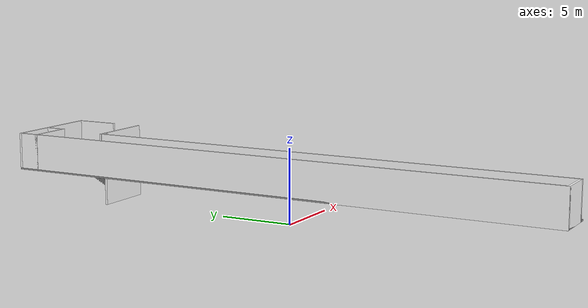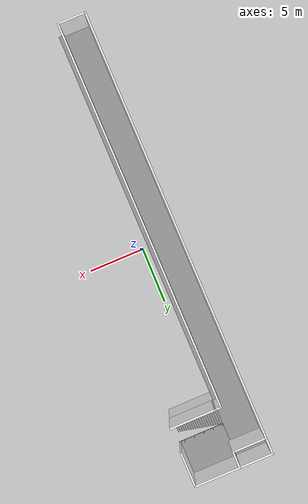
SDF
<?xml version='1.0'?>
<sdf version='1.7'>
  <model name='Building7_4th_Floor_collision_validation_withWall1'>
    <pose>0 0 0 0 0 0</pose>
    <link name='Wall_1'>
      <collision name='Wall_1_Collision'>
        <geometry>
          <box>
            <size>37 0.15 2.5</size>
          </box>
        </geometry>
        <pose>0 0 1.25 0 -0 0</pose>
      </collision>
      <visual name='Wall_1_Visual'>
        <pose>0 0 1.25 0 -0 0</pose>
        <geometry>
          <box>
            <size>37 0.15 2.5</size>
          </box>
        </geometry>
        <material>
			 <script>
            <name>Wand_beige</name>
          </script>
          <ambient>1 1 1 1</ambient>
        </material>
        <meta>
          <layer>1</layer>
        </meta>
      </visual>
      <pose>-3.35009 -0.675 2.5 0 -0 -1.5708</pose>
    </link>
    <link name='Wall_2'>
      <collision name='Wall_2_Collision'>
        <geometry>
          <box>
            <size>2.5 0.15 2.5</size>
          </box>
        </geometry>
        <pose>0 0 1.25 0 -0 0</pose>
      </collision>
      <visual name='Wall_2_Visual'>
        <pose>0 0 1.25 0 -0 0</pose>
        <geometry>
          <box>
            <size>2.5 0.15 2.5</size>
          </box>
        </geometry>
        <material>
          <script>
            <name>Wand_beige</name>
          </script>
          <ambient>1 1 1 1</ambient>
        </material>
        <meta>
          <layer>1</layer>
        </meta>
      </visual>
      <pose>-2.17509 -19.1 2.5 0 -0 0</pose>
    </link>
    <link name='Wall_3'>
      <collision name='Wall_3_Collision'>
        <geometry>
          <box>
            <size>33.341 0.15 2.5</size>
          </box>
        </geometry>
        <pose>0 0 1.25 0 -0 0</pose>
      </collision>
      <visual name='Wall_3_Visual'>
        <pose>0 0 1.25 0 -0 0</pose>
        <geometry>
          <box>
            <size>33.341 0.15 2.5</size>
          </box>
        </geometry>
        <material>
          <script>
            <name>Wand_beige</name>
          </script>
          <ambient>1 1 1 1</ambient>
        </material>
        <meta>
          <layer>1</layer>
        </meta>
      </visual>
      <pose>-1.00009 -2.5045 2.5 0 -0 -1.5708</pose>
    </link>
    <link name='Wall_4'>
      <collision name='Wall_4_Collision'>
        <geometry>
          <box>
            <size>0.65 0.15 2.5</size>
          </box>
        </geometry>
        <pose>0 0 1.25 0 -0 0</pose>
      </collision>
      <visual name='Wall_4_Visual'>
        <pose>0 0 1.25 0 -0 0</pose>
        <geometry>
          <box>
            <size>0.65 0.15 2.5</size>
          </box>
        </geometry>
        <material>
          <script>
            <name>Wand_beige</name>
          </script>
          <ambient>1 1 1 1</ambient>
        </material>
        <meta>
          <layer>1</layer>
        </meta>
      </visual>
      <pose>-0.749999 14.0908 2.5 0 -0 3.14087</pose>
    </link>
    <link name='Wall_6'>
      <collision name='Wall_6_Collision'>
        <geometry>
          <box>
            <size>3 0.15 2.5</size>
          </box>
        </geometry>
        <pose>0 0 1.25 0 -0 0</pose>
      </collision>
      <visual name='Wall_6_Visual'>
        <pose>0 0 1.25 0 -0 0</pose>
        <geometry>
          <box>
            <size>3 0.15 2.5</size>
          </box>
        </geometry>
        <material>
          <script>
            <name>Wand_beige</name>
          </script>
          <ambient>1 1 1 1</ambient>
        </material>
        <meta>
          <layer>1</layer>
        </meta>
      </visual>
      <pose>3.34991 17.675 2.5 0 -0 1.5708</pose>
    </link>
    <link name='Wall_7'>
      <collision name='Wall_7_Collision'>
        <geometry>
          <box>
            <size>4 0.15 2.5</size>
          </box>
        </geometry>
        <pose>0 0 1.25 0 -0 0</pose>
      </collision>
      <visual name='Wall_7_Visual'>
        <pose>0 0 1.25 0 -0 0</pose>
        <geometry>
          <box>
            <size>4 0.15 2.5</size>
          </box>
        </geometry>
        <material>
          <script>
            <name>Wand_beige</name>
          </script>
          <ambient>1 1 1 1</ambient>
        </material>
        <meta>
          <layer>1</layer>
        </meta>
      </visual>
      <pose>1.42491 19.1 2.5 0 -0 3.14159</pose>
    </link>
    <link name='Wall_8'>
      <collision name='Wall_8_Collision'>
        <geometry>
          <box>
            <size>1.5 0.15 2.5</size>
          </box>
        </geometry>
        <pose>0 0 1.25 0 -0 0</pose>
      </collision>
      <visual name='Wall_8_Visual'>
        <pose>0 0 1.25 0 -0 0</pose>
        <geometry>
          <box>
            <size>1.5 0.15 2.5</size>
          </box>
        </geometry>
        <material>
          <script>
            <name>Wand_beige</name>
          </script>
          <ambient>1 1 1 1</ambient>
        </material>
        <meta>
          <layer>1</layer>
        </meta>
      </visual>
      <pose>-0.500093 18.425 2.5 0 -0 -1.5708</pose>
    </link>
    <link name='Wall_9'>
      <collision name='Wall_9_Collision'>
        <geometry>
          <box>
            <size>3 0.15 2.5</size>
          </box>
        </geometry>
        <pose>0 0 1.25 0 -0 0</pose>
      </collision>
      <visual name='Wall_9_Visual'>
        <pose>0 0 1.25 0 -0 0</pose>
        <geometry>
          <box>
            <size>3 0.15 2.5</size>
          </box>
        </geometry>
        <material>
          <script>
            <name>Wand_beige</name>
          </script>
          <ambient>1 1 1 1</ambient>
        </material>
        <meta>
          <layer>1</layer>
        </meta>
      </visual>
      <pose>-1.92509 17.75 2.5 0 -0 3.14159</pose>
    </link>
    <link name='Wall_10'>
      <collision name='Wall_10_Collision'>
        <geometry>
          <box>
            <size>0.04 0.04 0.5</size>
          </box>
        </geometry>
        <pose>2.22 0 0.25 0 -0 0</pose>
      </collision>
      <visual name='Wall_10_Visual'>
        <pose>2.22 0 0.25 0 -0 0</pose>
        <geometry>
          <box>
            <size>0.04 0.04 0.5</size>
          </box>
        </geometry>
        <material>
          <script>
            <name>Wand_beige</name>
          </script>
          <ambient>1 1 1 1</ambient>
        </material>
        <meta>
          <layer>1</layer>
        </meta>
      </visual>
      <pose>-0.500093 18.425 2.5 0 -0 -1.5708</pose>
    </link>
    <link name='Wall_11'>
      <collision name='Wall_11_Collision'>
        <geometry>
          <box>
            <size>0.04 0.04 0.5</size>
          </box>
        </geometry>
        <pose>2.22 0.85 0.25 0 -0 0</pose>
      </collision>
      <visual name='Wall_12_Visual'>
        <pose>2.22 0.85 0.25 0 -0 0</pose>
        <geometry>
          <box>
            <size>0.04 0.04 0.5</size>
          </box>
        </geometry>
        <material>
          <script>
            <name>Wand_beige</name>
          </script>
          <ambient>1 1 1 1</ambient>
        </material>
        <meta>
          <layer>1</layer>
        </meta>
      </visual>
      <pose>-0.500093 18.425 2.5 0 -0 -1.5708</pose>
    </link>
    <link name='Wall_12'>
      <collision name='Wall_12_Collision'>
        <geometry>
          <box>
            <size>0.04 0.04 0.5</size>
          </box>
        </geometry>
        <pose>2.22 1.7 0.25 0 -0 0</pose>
      </collision>
      <visual name='Wall_12_Visual'>
        <pose>2.22 1.7 0.25 0 -0 0</pose>
        <geometry>
          <box>
            <size>0.04 0.04 0.5</size>
          </box>
        </geometry>
        <material>
          <script>
            <name>Wand_beige</name>
          </script>
          <ambient>1 1 1 1</ambient>
        </material>
        <meta>
          <layer>1</layer>
        </meta>
      </visual>
      <pose>-0.500093 18.425 2.5 0 -0 -1.5708</pose>
    </link>
    <link name='Wall_13'>
      <collision name='Wall_13_Collision'>
        <geometry>
          <box>
            <size>0.04 0.04 0.5</size>
          </box>
        </geometry>
        <pose>2.22 2.55 0.25 0 -0 0</pose>
      </collision>
      <visual name='Wall_13_Visual'>
        <pose>2.22 2.55 0.25 0 -0 0</pose>
        <geometry>
          <box>
            <size>0.04 0.04 0.5</size>
          </box>
        </geometry>
        <material>
          <script>
            <name>Wand_beige</name>
          </script>
          <ambient>1 1 1 1</ambient>
        </material>
        <meta>
          <layer>1</layer>
        </meta>
      </visual>
      <pose>-0.500093 18.425 2.5 0 -0 -1.5708</pose>
    </link>
    <link name='Wall_14'>
      <collision name='Wall_14_Collision'>
        <geometry>
          <box>
            <size>0.04 0.04 0.5</size>
          </box>
        </geometry>
        <pose>2.22 3.4 0.25 0 -0 0</pose>
      </collision>
      <visual name='Wall_14_Visual'>
        <pose>2.22 3.4 0.25 0 -0 0</pose>
        <geometry>
          <box>
            <size>0.04 0.04 0.5</size>
          </box>
        </geometry>
        <material>
          <script>
            <name>Wand_beige</name>
          </script>
          <ambient>1 1 1 1</ambient>
        </material>
        <meta>
          <layer>1</layer>
        </meta>
      </visual>
      <pose>-0.500093 18.425 2.5 0 -0 -1.5708</pose>
    </link>
    <link name='Floor_0'>
      <pose>-9e-05 1e-06 2.5 0 -0 0</pose>
      <visual name='Floor_0_Visual_0'>
        <pose>-2.0038 0 0.05 0 -0 0</pose>
        <geometry>
          <box>
            <size>2.84242 38.35 0.1</size>
          </box>
        </geometry>
        <material>
          <script>
            <uri>file://media/materials/scripts/gazebo.material</uri>
            <name>Gazebo/Grey</name>
          </script>
          <ambient>1 1 1 1</ambient>
        </material>
        <meta>
          <layer>1</layer>
        </meta>
      </visual>
      <collision name='Floor_0_Collision_0'>
        <geometry>
          <box>
            <size>2.84242 38.35 0.1</size>
          </box>
        </geometry>
        <pose>-2.0038 0 0.05 0 -0 0</pose>
      </collision>
      <visual name='Floor_0_Visual_3'>
        <pose>1.41741 17.673 0.05 0 -0 0</pose>
        <geometry>
          <box>
            <size>4 3.004 0.1</size>
          </box>
        </geometry>
        <material>
          <script>
            <uri>file://media/materials/scripts/gazebo.material</uri>
            <name>Gazebo/Grey</name>
          </script>
          <ambient>1 1 1 1</ambient>
        </material>
        <meta>
          <layer>1</layer>
        </meta>
      </visual>
      <collision name='Floor_0_Collision_3'>
        <geometry>
          <box>
            <size>4 3.004 0.1</size>
          </box>
        </geometry>
        <pose>1.41741 17.673 0.05 0 -0 0</pose>
      </collision>
    </link>
    <link name='Stairs_3'>
      <visual name='Stairs_3_Visual_0'>
        <pose>3.31732 15.171 0.0625 0 0 -1.5708</pose>
        <geometry>
          <box>
            <size>2 0.2 0.125</size>
          </box>
        </geometry>
        <material>
          <script>
            <uri>file://media/materials/scripts/gazebo.material</uri>
            <name>Gazebo/Grey</name>
          </script>
          <ambient>1 1 1 1</ambient>
        </material>
        <meta>
          <layer>0</layer>
        </meta>
      </visual>
      <collision name='Stairs_3_Collision_0'>
        <geometry>
          <box>
            <size>2 0.2 0.125</size>
          </box>
        </geometry>
        <pose>3.31732 15.171 0.0625 0 0 -1.5708</pose>
      </collision>
      <visual name='Stairs_3_Visual_1'>
        <pose>3.11732 15.171 0.1875 0 0 -1.5708</pose>
        <geometry>
          <box>
            <size>2 0.2 0.125</size>
          </box>
        </geometry>
        <material>
          <script>
            <uri>file://media/materials/scripts/gazebo.material</uri>
            <name>Gazebo/Grey</name>
          </script>
          <ambient>1 1 1 1</ambient>
        </material>
        <meta>
          <layer>0</layer>
        </meta>
      </visual>
      <collision name='Stairs_3_Collision_1'>
        <geometry>
          <box>
            <size>2 0.2 0.125</size>
          </box>
        </geometry>
        <pose>3.11732 15.171 0.1875 0 0 -1.5708</pose>
      </collision>
      <visual name='Stairs_3_Visual_2'>
        <pose>2.91732 15.171 0.3125 0 0 -1.5708</pose>
        <geometry>
          <box>
            <size>2 0.2 0.125</size>
          </box>
        </geometry>
        <material>
          <script>
            <uri>file://media/materials/scripts/gazebo.material</uri>
            <name>Gazebo/Grey</name>
          </script>
          <ambient>1 1 1 1</ambient>
        </material>
        <meta>
          <layer>0</layer>
        </meta>
      </visual>
      <collision name='Stairs_3_Collision_2'>
        <geometry>
          <box>
            <size>2 0.2 0.125</size>
          </box>
        </geometry>
        <pose>2.91732 15.171 0.3125 0 0 -1.5708</pose>
      </collision>
      <visual name='Stairs_3_Visual_3'>
        <pose>2.71732 15.171 0.4375 0 0 -1.5708</pose>
        <geometry>
          <box>
            <size>2 0.2 0.125</size>
          </box>
        </geometry>
        <material>
          <script>
            <uri>file://media/materials/scripts/gazebo.material</uri>
            <name>Gazebo/Grey</name>
          </script>
          <ambient>1 1 1 1</ambient>
        </material>
        <meta>
          <layer>0</layer>
        </meta>
      </visual>
      <collision name='Stairs_3_Collision_3'>
        <geometry>
          <box>
            <size>2 0.2 0.125</size>
          </box>
        </geometry>
        <pose>2.71732 15.171 0.4375 0 0 -1.5708</pose>
      </collision>
      <visual name='Stairs_3_Visual_4'>
        <pose>2.51732 15.171 0.5625 0 0 -1.5708</pose>
        <geometry>
          <box>
            <size>2 0.2 0.125</size>
          </box>
        </geometry>
        <material>
          <script>
            <uri>file://media/materials/scripts/gazebo.material</uri>
            <name>Gazebo/Grey</name>
          </script>
          <ambient>1 1 1 1</ambient>
        </material>
        <meta>
          <layer>0</layer>
        </meta>
      </visual>
      <collision name='Stairs_3_Collision_4'>
        <geometry>
          <box>
            <size>2 0.2 0.125</size>
          </box>
        </geometry>
        <pose>2.51732 15.171 0.5625 0 0 -1.5708</pose>
      </collision>
      <visual name='Stairs_3_Visual_5'>
        <pose>2.31732 15.171 0.6875 0 0 -1.5708</pose>
        <geometry>
          <box>
            <size>2 0.2 0.125</size>
          </box>
        </geometry>
        <material>
          <script>
            <uri>file://media/materials/scripts/gazebo.material</uri>
            <name>Gazebo/Grey</name>
          </script>
          <ambient>1 1 1 1</ambient>
        </material>
        <meta>
          <layer>0</layer>
        </meta>
      </visual>
      <collision name='Stairs_3_Collision_5'>
        <geometry>
          <box>
            <size>2 0.2 0.125</size>
          </box>
        </geometry>
        <pose>2.31732 15.171 0.6875 0 0 -1.5708</pose>
      </collision>
      <visual name='Stairs_3_Visual_6'>
        <pose>2.11732 15.171 0.8125 0 0 -1.5708</pose>
        <geometry>
          <box>
            <size>2 0.2 0.125</size>
          </box>
        </geometry>
        <material>
          <script>
            <uri>file://media/materials/scripts/gazebo.material</uri>
            <name>Gazebo/Grey</name>
          </script>
          <ambient>1 1 1 1</ambient>
        </material>
        <meta>
          <layer>0</layer>
        </meta>
      </visual>
      <collision name='Stairs_3_Collision_6'>
        <geometry>
          <box>
            <size>2 0.2 0.125</size>
          </box>
        </geometry>
        <pose>2.11732 15.171 0.8125 0 0 -1.5708</pose>
      </collision>
      <visual name='Stairs_3_Visual_7'>
        <pose>1.91732 15.171 0.9375 0 0 -1.5708</pose>
        <geometry>
          <box>
            <size>2 0.2 0.125</size>
          </box>
        </geometry>
        <material>
          <script>
            <uri>file://media/materials/scripts/gazebo.material</uri>
            <name>Gazebo/Grey</name>
          </script>
          <ambient>1 1 1 1</ambient>
        </material>
        <meta>
          <layer>0</layer>
        </meta>
      </visual>
      <collision name='Stairs_3_Collision_7'>
        <geometry>
          <box>
            <size>2 0.2 0.125</size>
          </box>
        </geometry>
        <pose>1.91732 15.171 0.9375 0 0 -1.5708</pose>
      </collision>
      <visual name='Stairs_3_Visual_8'>
        <pose>1.71732 15.171 1.0625 0 0 -1.5708</pose>
        <geometry>
          <box>
            <size>2 0.2 0.125</size>
          </box>
        </geometry>
        <material>
          <script>
            <uri>file://media/materials/scripts/gazebo.material</uri>
            <name>Gazebo/Grey</name>
          </script>
          <ambient>1 1 1 1</ambient>
        </material>
        <meta>
          <layer>0</layer>
        </meta>
      </visual>
      <collision name='Stairs_3_Collision_8'>
        <geometry>
          <box>
            <size>2 0.2 0.125</size>
          </box>
        </geometry>
        <pose>1.71732 15.171 1.0625 0 0 -1.5708</pose>
      </collision>
      <visual name='Stairs_3_Visual_9'>
        <pose>1.51732 15.171 1.1875 0 0 -1.5708</pose>
        <geometry>
          <box>
            <size>2 0.2 0.125</size>
          </box>
        </geometry>
        <material>
          <script>
            <uri>file://media/materials/scripts/gazebo.material</uri>
            <name>Gazebo/Grey</name>
          </script>
          <ambient>1 1 1 1</ambient>
        </material>
        <meta>
          <layer>0</layer>
        </meta>
      </visual>
      <collision name='Stairs_3_Collision_9'>
        <geometry>
          <box>
            <size>2 0.2 0.125</size>
          </box>
        </geometry>
        <pose>1.51732 15.171 1.1875 0 0 -1.5708</pose>
      </collision>
      <visual name='Stairs_3_Visual_10'>
        <pose>1.31732 15.171 1.3125 0 0 -1.5708</pose>
        <geometry>
          <box>
            <size>2 0.2 0.125</size>
          </box>
        </geometry>
        <material>
          <script>
            <uri>file://media/materials/scripts/gazebo.material</uri>
            <name>Gazebo/Grey</name>
          </script>
          <ambient>1 1 1 1</ambient>
        </material>
        <meta>
          <layer>0</layer>
        </meta>
      </visual>
      <collision name='Stairs_3_Collision_10'>
        <geometry>
          <box>
            <size>2 0.2 0.125</size>
          </box>
        </geometry>
        <pose>1.31732 15.171 1.3125 0 0 -1.5708</pose>
      </collision>
      <visual name='Stairs_3_Visual_11'>
        <pose>1.11732 15.171 1.4375 0 0 -1.5708</pose>
        <geometry>
          <box>
            <size>2 0.2 0.125</size>
          </box>
        </geometry>
        <material>
          <script>
            <uri>file://media/materials/scripts/gazebo.material</uri>
            <name>Gazebo/Grey</name>
          </script>
          <ambient>1 1 1 1</ambient>
        </material>
        <meta>
          <layer>0</layer>
        </meta>
      </visual>
      <collision name='Stairs_3_Collision_11'>
        <geometry>
          <box>
            <size>2 0.2 0.125</size>
          </box>
        </geometry>
        <pose>1.11732 15.171 1.4375 0 0 -1.5708</pose>
      </collision>
      <visual name='Stairs_3_Visual_12'>
        <pose>0.917324 15.171 1.5625 0 0 -1.5708</pose>
        <geometry>
          <box>
            <size>2 0.2 0.125</size>
          </box>
        </geometry>
        <material>
          <script>
            <uri>file://media/materials/scripts/gazebo.material</uri>
            <name>Gazebo/Grey</name>
          </script>
          <ambient>1 1 1 1</ambient>
        </material>
        <meta>
          <layer>0</layer>
        </meta>
      </visual>
      <collision name='Stairs_3_Collision_12'>
        <geometry>
          <box>
            <size>2 0.2 0.125</size>
          </box>
        </geometry>
        <pose>0.917324 15.171 1.5625 0 0 -1.5708</pose>
      </collision>
      <visual name='Stairs_3_Visual_13'>
        <pose>0.717324 15.171 1.6875 0 0 -1.5708</pose>
        <geometry>
          <box>
            <size>2 0.2 0.125</size>
          </box>
        </geometry>
        <material>
          <script>
            <uri>file://media/materials/scripts/gazebo.material</uri>
            <name>Gazebo/Grey</name>
          </script>
          <ambient>1 1 1 1</ambient>
        </material>
        <meta>
          <layer>0</layer>
        </meta>
      </visual>
      <collision name='Stairs_3_Collision_13'>
        <geometry>
          <box>
            <size>2 0.2 0.125</size>
          </box>
        </geometry>
        <pose>0.717324 15.171 1.6875 0 0 -1.5708</pose>
      </collision>
      <visual name='Stairs_3_Visual_14'>
        <pose>0.517324 15.171 1.8125 0 0 -1.5708</pose>
        <geometry>
          <box>
            <size>2 0.2 0.125</size>
          </box>
        </geometry>
        <material>
          <script>
            <uri>file://media/materials/scripts/gazebo.material</uri>
            <name>Gazebo/Grey</name>
          </script>
          <ambient>1 1 1 1</ambient>
        </material>
        <meta>
          <layer>0</layer>
        </meta>
      </visual>
      <collision name='Stairs_3_Collision_14'>
        <geometry>
          <box>
            <size>2 0.2 0.125</size>
          </box>
        </geometry>
        <pose>0.517324 15.171 1.8125 0 0 -1.5708</pose>
      </collision>
      <visual name='Stairs_3_Visual_15'>
        <pose>0.317324 15.171 1.9375 0 0 -1.5708</pose>
        <geometry>
          <box>
            <size>2 0.2 0.125</size>
          </box>
        </geometry>
        <material>
          <script>
            <uri>file://media/materials/scripts/gazebo.material</uri>
            <name>Gazebo/Grey</name>
          </script>
          <ambient>1 1 1 1</ambient>
        </material>
        <meta>
          <layer>0</layer>
        </meta>
      </visual>
      <collision name='Stairs_3_Collision_15'>
        <geometry>
          <box>
            <size>2 0.2 0.125</size>
          </box>
        </geometry>
        <pose>0.317324 15.171 1.9375 0 0 -1.5708</pose>
      </collision>
      <visual name='Stairs_3_Visual_16'>
        <pose>0.117324 15.171 2.0625 0 0 -1.5708</pose>
        <geometry>
          <box>
            <size>2 0.2 0.125</size>
          </box>
        </geometry>
        <material>
          <script>
            <uri>file://media/materials/scripts/gazebo.material</uri>
            <name>Gazebo/Grey</name>
          </script>
          <ambient>1 1 1 1</ambient>
        </material>
        <meta>
          <layer>0</layer>
        </meta>
      </visual>
      <collision name='Stairs_3_Collision_16'>
        <geometry>
          <box>
            <size>2 0.2 0.125</size>
          </box>
        </geometry>
        <pose>0.117324 15.171 2.0625 0 0 -1.5708</pose>
      </collision>
      <visual name='Stairs_3_Visual_17'>
        <pose>-0.082676 15.171 2.1875 0 0 -1.5708</pose>
        <geometry>
          <box>
            <size>2 0.2 0.125</size>
          </box>
        </geometry>
        <material>
          <script>
            <uri>file://media/materials/scripts/gazebo.material</uri>
            <name>Gazebo/Grey</name>
          </script>
          <ambient>1 1 1 1</ambient>
        </material>
        <meta>
          <layer>0</layer>
        </meta>
      </visual>
      <collision name='Stairs_3_Collision_17'>
        <geometry>
          <box>
            <size>2 0.2 0.125</size>
          </box>
        </geometry>
        <pose>-0.082676 15.171 2.1875 0 0 -1.5708</pose>
      </collision>
      <visual name='Stairs_3_Visual_18'>
        <pose>-0.282676 15.171 2.3125 0 0 -1.5708</pose>
        <geometry>
          <box>
            <size>2 0.2 0.125</size>
          </box>
        </geometry>
        <material>
          <script>
            <uri>file://media/materials/scripts/gazebo.material</uri>
            <name>Gazebo/Grey</name>
          </script>
          <ambient>1 1 1 1</ambient>
        </material>
        <meta>
          <layer>0</layer>
        </meta>
      </visual>
      <collision name='Stairs_3_Collision_18'>
        <geometry>
          <box>
            <size>2 0.2 0.125</size>
          </box>
        </geometry>
        <pose>-0.282676 15.171 2.3125 0 0 -1.5708</pose>
      </collision>
      <visual name='Stairs_3_Visual_19'>
        <pose>-0.482676 15.171 2.4375 0 0 -1.5708</pose>
        <geometry>
          <box>
            <size>2 0.2 0.125</size>
          </box>
        </geometry>
        <material>
          <script>
            <uri>file://media/materials/scripts/gazebo.material</uri>
            <name>Gazebo/Grey</name>
          </script>
          <ambient>1 1 1 1</ambient>
        </material>
        <meta>
          <layer>0</layer>
        </meta>
      </visual>
      <collision name='Stairs_3_Collision_19'>
        <geometry>
          <box>
            <size>2 0.2 0.125</size>
          </box>
        </geometry>
        <pose>-0.482676 15.171 2.4375 0 0 -1.5708</pose>
      </collision>
    </link>
    <link name='Wall_92'>
      <collision name='Wall_92_Collision'>
        <geometry>
          <box>
            <size>4 0.15 2.5</size>
          </box>
        </geometry>
        <pose>0 0 1.25 0 -0 0</pose>
      </collision>
      <visual name='Wall_92_Visual'>
        <pose>0 0 1.25 0 -0 0</pose>
        <geometry>
          <box>
            <size>4 0.15 2.5</size>
          </box>
        </geometry>
        <material>
          <script>
            <name>Wand_beige</name>
          </script>
          <ambient>1 1 1 1</ambient>
        </material>
        <meta>
          <layer>0</layer>
        </meta>
      </visual>
      <pose>1.4251 14.0906 0 0 -0 0</pose>
    </link>
    <link name='Wall_30'>
      <collision name='Wall_30_Collision'>
        <geometry>
          <box>
            <size>3 0.15 2.5</size>
          </box>
        </geometry>
        <pose>0 0 1.25 0 -0 0</pose>
      </collision>
      <visual name='Wall_30_Visual'>
        <pose>0 0 1.25 0 -0 0</pose>
        <geometry>
          <box>
            <size>3 0.15 2.5</size>
          </box>
        </geometry>
        <material>
          <script>
            <name>Wand_beige</name>
          </script>
          <ambient>1 1 1 1</ambient>
        </material>
        <meta>
          <layer>1</layer>
        </meta>
      </visual>
      <pose>-1.92509 19.1 2.5 0 -0 3.14159</pose>
    </link>
    <link name='Wall_35'>
      <collision name='Wall_35_Collision'>
        <geometry>
          <box>
            <size>1.5 0.15 2.5</size>
          </box>
        </geometry>
        <pose>0 0 1.25 0 -0 0</pose>
      </collision>
      <visual name='Wall_35_Visual'>
        <pose>0 0 1.25 0 -0 0</pose>
        <geometry>
          <box>
            <size>1.5 0.15 2.5</size>
          </box>
        </geometry>
        <material>
          <script>
            <name>Wand_beige</name>
          </script>
          <ambient>1 1 1 1</ambient>
        </material>
        <meta>
          <layer>1</layer>
        </meta>
      </visual>
      <pose>-3.35009 18.425 2.5 0 -0 -1.5708</pose>
    </link>
    <link name='Wall_93'>
      <collision name='Wall_93_Collision'>
        <geometry>
          <box>
            <size>4 0.15 2.5</size>
          </box>
        </geometry>
        <pose>0 0 1.25 0 -0 0</pose>
      </collision>
      <visual name='Wall_93_Visual'>
        <pose>0 0 1.25 0 -0 0</pose>
        <geometry>
          <box>
            <size>4 0.15 2.5</size>
          </box>
        </geometry>
        <material>
          <script>
            <name>Wand_beige</name>
          </script>
          <ambient>1 1 1 1</ambient>
        </material>
        <meta>
          <layer>1</layer>
        </meta>
      </visual>
      <pose>1.425 14.0908 2.5 0 -0 9.3e-05</pose>
    </link>
    <static>1</static>
  </model>
</sdf>
